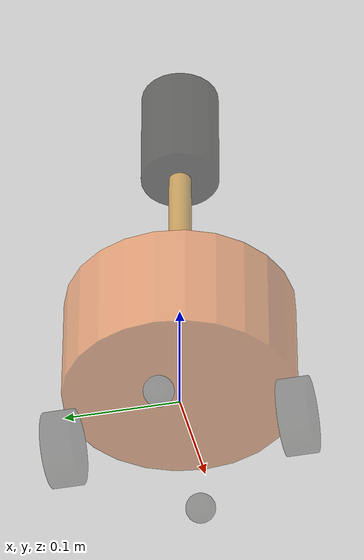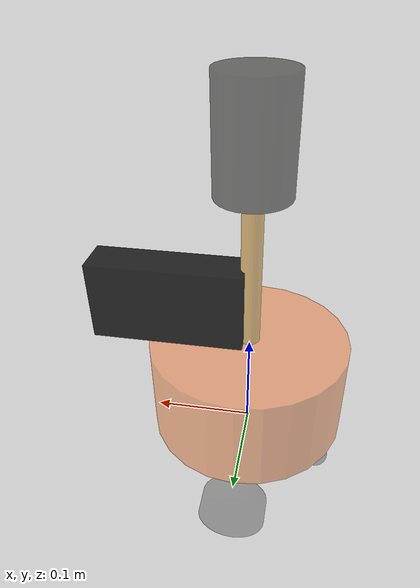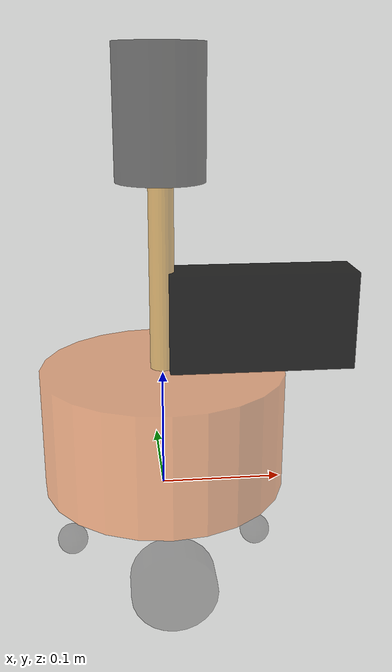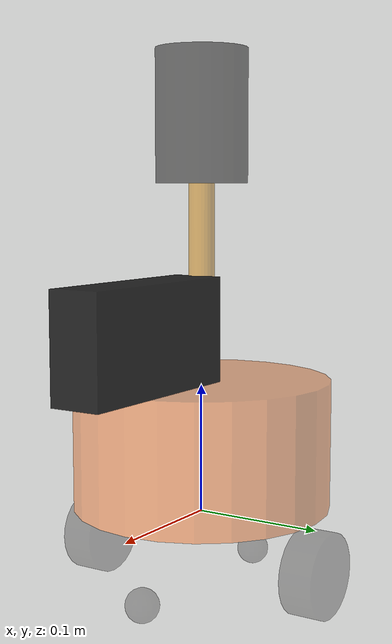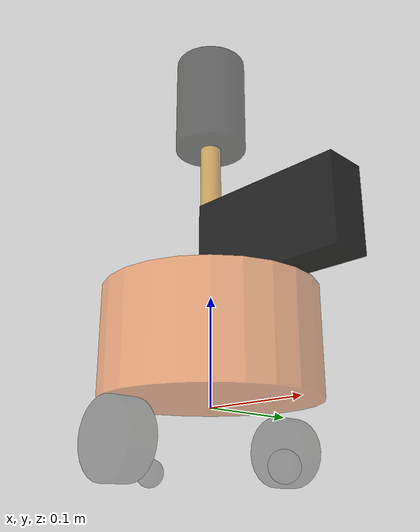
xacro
<!-- 组合小车底盘与摄像头与雷达 -->
<robot name="my_car_camera" xmlns:xacro="http://wiki.ros.org/xacro">
    <xacro:include filename="demo02_car_base.urdf.xacro" />
    <xacro:include filename="demo03_car_camera.urdf.xacro" />
    <xacro:include filename="demo04_car_laser.urdf.xacro" />
</robot>

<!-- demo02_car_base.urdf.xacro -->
<robot name="mycar" xmlns:xacro="http://wiki.ros.org/xacro">

    <xacro:property name="footprint_radius" value="0.001" />
    <link name="base_footprint">
        <visual>
            <geometry>
                <sphere radius="${footprint_radius}" />
            </geometry>
        </visual>
    </link>

    <xacro:property name="base_radius" value="0.1" />
    <xacro:property name="base_length" value="0.1" />

    <xacro:property name="lidi" value="0.07" />
    <xacro:property name="base_joint_z" value="${base_length / 2 + lidi}" />
    <link name="base_link">
        <visual>
            <geometry>
                <cylinder radius="${base_radius}" length="${base_length}" />
            </geometry>

            <origin xyz="0 0 0" rpy="0 0 0" />

            <material name="baselink_color">
                <color rgba="1.0 0.5 0.2 0.5" />
            </material>
        </visual>

    </link>

    <joint name="link2footprint" type="fixed">
        <parent link="base_footprint"  />
        <child link="base_link" />
        <origin xyz="0 0 0.055" rpy="0 0 0" />
    </joint>

    <xacro:property name="wheel_radius" value="0.0325" />
    <xacro:property name="wheel_length" value="0.026" />
    <xacro:property name="PI" value="3.1415927" />
    <xacro:property name="wheel_joint_z" value="${(base_length / 2 + lidi - wheel_radius) * -1}" />

    <xacro:macro name="wheel_func" params="wheel_name flag">

        <link name="${wheel_name}_wheel">
            <visual>
                <geometry>
                    <cylinder radius="${wheel_radius}" length="${wheel_length}" />
                </geometry>

                <origin xyz="0 0 0" rpy="${PI / 2} 0 0" />

                <material name="wheel_color">
                    <color rgba="0 0 0 0.3" />
                </material>
            </visual>

        </link>

        <joint name="${wheel_name}2link" type="continuous">
            <parent link="base_link"  />
            <child link="${wheel_name}_wheel" />

            <origin xyz="0 ${0.1 * flag} ${wheel_joint_z}" rpy="0 0 0" />
            <axis xyz="0 1 0" />
        </joint>

    </xacro:macro>

    <xacro:wheel_func wheel_name="left" flag="1" />
    <xacro:wheel_func wheel_name="right" flag="-1" />

    <xacro:property name="small_wheel_radius" value="0.013" />
    <xacro:property name="small_joint_z" value="${(base_length / 2 + lidi - small_wheel_radius) * -1}" />

    <xacro:macro name="small_wheel_func" params="small_wheel_name flag">
        <link name="${small_wheel_name}_wheel">
            <visual>
                <geometry>
                    <sphere radius="${small_wheel_radius}" />
                </geometry>

                <origin xyz="0 0 0" rpy="0 0 0" />

                <material name="wheel_color">
                    <color rgba="0 0 0 0.3" />
                </material>
            </visual>

        </link>

        <joint name="${small_wheel_name}2link" type="continuous">
            <parent link="base_link"  />
            <child link="${small_wheel_name}_wheel" />

            <origin xyz="${0.08 * flag} 0 ${small_joint_z}" rpy="0 0 0" />
            <axis xyz="0 1 0" />
        </joint>

    </xacro:macro >
    <xacro:small_wheel_func small_wheel_name="front" flag="1"/>
    <xacro:small_wheel_func small_wheel_name="back" flag="-1"/>

</robot>

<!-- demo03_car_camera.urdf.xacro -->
<robot name="mycar" xmlns:xacro="http://wiki.ros.org/xacro">

    <xacro:property name="camera_length" value="0.15" />
    <xacro:property name="camera_width" value="0.04" />
    <xacro:property name="camera_height" value="0.08" />
    <xacro:property name="joint_camera_x" value="0.08" />
    <xacro:property name="joint_camera_y" value="0" />
    <xacro:property name="joint_camera_z" value="${base_length / 2 + camera_height / 2}" />

    <link name="camera">
        <visual>
            <geometry>
                <box size="${camera_length} ${camera_width} ${camera_height}" />
            </geometry>
            <origin xyz="0 0 0" rpy="0 0 0" />
            <material name="black">
                <color rgba="0 0 0 0.8" />
            </material>
        </visual>
    </link>

    <joint name="camera2base" type="fixed">
        <parent link="base_link" />
        <child link="camera" />
        <origin xyz="${joint_camera_x} ${joint_camera_y} ${joint_camera_z}" rpy="0 0 0" />
    </joint>

</robot>

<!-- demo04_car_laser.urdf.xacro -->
<robot name="mycar" xmlns:xacro="http://wiki.ros.org/xacro">

    <xacro:property name="support_radius" value="0.01" />
    <xacro:property name="support_length" value="0.15" />

    <xacro:property name="laser_radius" value="0.035" />
    <xacro:property name="laser_length" value="0.1" />

    <xacro:property name="joint_support_x" value="0" />
    <xacro:property name="joint_support_y" value="0" />
    <xacro:property name="joint_support_z" value="${base_length / 2 + support_length / 2}" />

    <xacro:property name="joint_laser_x" value="0" />
    <xacro:property name="joint_laser_y" value="0" />
    <xacro:property name="joint_laser_z" value="${support_length / 2 + laser_length / 2}" />

    <link name="support">
        <visual>
            <geometry>
                <cylinder radius="${support_radius}" length="${support_length}" />
            </geometry>
            <material name="yellow">
                <color rgba="0.8 0.5 0.0 0.5" />
            </material>
        </visual>

    </link>

    <joint name="support2base" type="fixed">
        <parent link="base_link" />
        <child link="support"/>
        <origin xyz="${joint_support_x} ${joint_support_y} ${joint_support_z}" rpy="0 0 0" />
    </joint>
    <link name="laser">
        <visual>
            <geometry>
                <cylinder radius="${laser_radius}" length="${laser_length}" />
            </geometry>
            <material name="black">
                <color rgba="0 0 0 0.5" />
            </material>
        </visual>

    </link>

    <joint name="laser2support" type="fixed">
        <parent link="support" />
        <child link="laser"/>
        <origin xyz="${joint_laser_x} ${joint_laser_y} ${joint_laser_z}" rpy="0 0 0" />
    </joint>
</robot>
